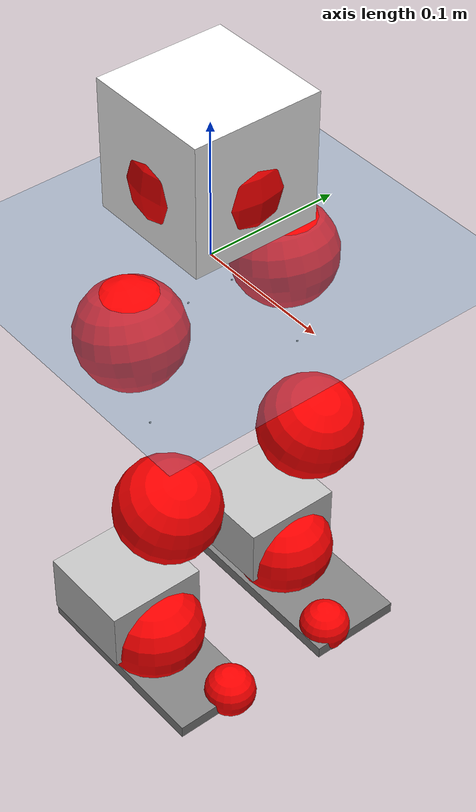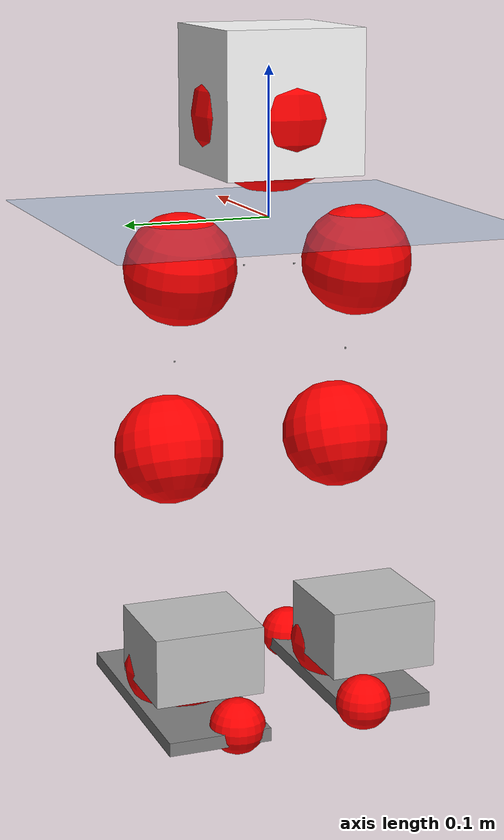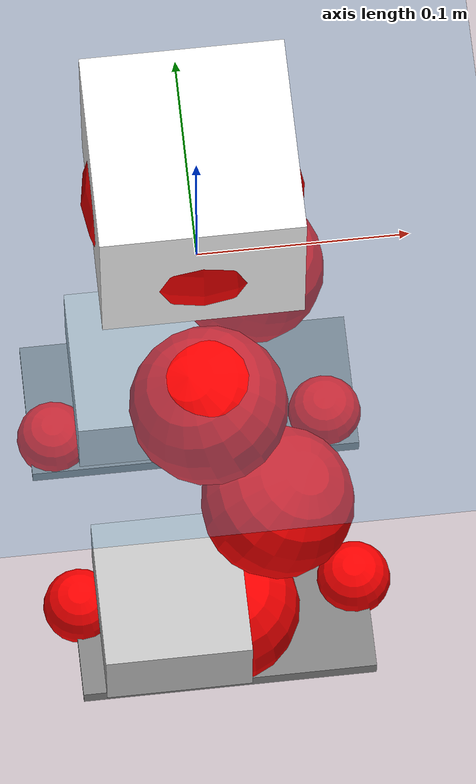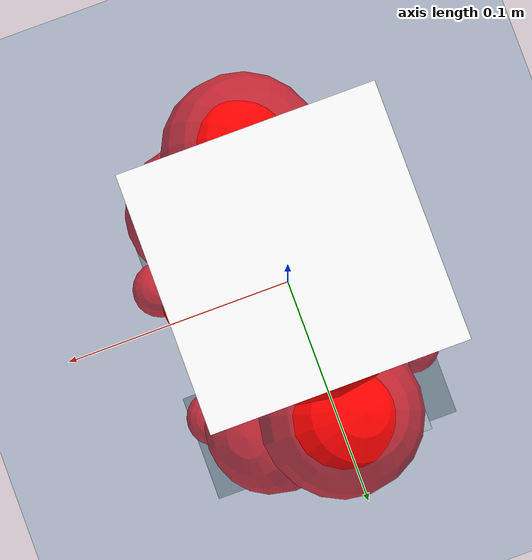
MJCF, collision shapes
<mujoco model="pi_12dof_release_v1">
  <compiler angle="radian" assetdir="assets" balanceinertia="true" inertiafromgeom="false"/>

  <option timestep="0.005" density="1.2" viscosity="2e-05"/>

  <size nkey="1"/>

  <visual>
    <quality shadowsize="8192"/>
    <map shadowclip="0.5"/>
  </visual>

  <default>
    <default class="/">
      <joint armature="0.01" damping="0.01" frictionloss="0.01"/>
      <geom contype="0" conaffinity="0" group="1" solref="-1000 -80"/>
      <site size="0.01 0.005 0.005" group="5"/>
      <general forcelimited="true" biastype="affine" gainprm="20" biasprm="0 -20 -0.5"/>
      <default class="foot">
        <geom size="0.0845 0.036 0.005" type="box" condim="6" group="4" priority="1" friction="0.9 0.2 0.2" solimp="0.015 1 0.005"/>
      </default>
      <default class="reward_collision_sphere">
        <geom group="5" rgba="1 0 0 1"/>
      </default>
    </default>
  </default>

  <asset>
    <texture type="skybox" colorspace="auto" name="//unnamed_texture_0" builtin="gradient" rgb1="0.95 0.95 0.95" rgb2="0.95 0.95 0.95" width="100" height="600"/>
    <texture type="2d" colorspace="auto" name="texplane" builtin="checker" rgb1="0.345 0.575 0.748" rgb2="0.345 0.575 0.748" markrgb="1 1 1" width="512" height="512"/>
    <material name="MatPlane" class="/" texture="texplane" texuniform="true" texrepeat="2 2" specular="0.9"/>
    <mesh name="baselink_1" class="/" file="baselink_1.STL"/>
    <mesh name="r_hip_pitch_link" class="/" file="r_hip_pitch_link.STL"/>
    <mesh name="r_hip_roll_link" class="/" file="r_hip_roll_link.STL"/>
    <mesh name="r_thigh_link" class="/" file="r_thigh_link.STL"/>
    <mesh name="r_calf_link" class="/" file="r_calf_link.STL"/>
    <mesh name="r_ankle_pitch_link" class="/" file="r_ankle_pitch_link.STL"/>
    <mesh name="r_ankle_roll_link" class="/" file="r_ankle_roll_link.STL"/>
    <mesh name="l_hip_pitch_link" class="/" file="l_hip_pitch_link.STL"/>
    <mesh name="l_hip_roll_link" class="/" file="l_hip_roll_link.STL"/>
    <mesh name="l_thigh_link" class="/" file="l_thigh_link.STL"/>
    <mesh name="l_calf_link" class="/" file="l_calf_link.STL"/>
    <mesh name="l_ankle_pitch_link" class="/" file="l_ankle_pitch_link.STL"/>
    <mesh name="l_ankle_roll_link" class="/" file="l_ankle_roll_link.STL"/>
  </asset>

  <worldbody>
    <geom name="floor" class="/" size="100 100 0.125" type="plane" group="0" material="MatPlane"/>
    <light name="toplight_shadow" class="/" pos="0 0 5" dir="0.0990148 0.0990148 -0.990148" type="directional" ambient="0.04 0.04 0.04" diffuse="0.55 0.55 0.55" specular="0.12 0.12 0.12"/>
    <light name="toplight_fill" class="/" pos="0 0 5" dir="0.0990148 0.0990148 -0.990148" type="directional" castshadow="false" ambient="0.04 0.04 0.04" diffuse="0.3 0.3 0.3" specular="0.08 0.08 0.08"/>
    <body name="trunk" pos="-0.00185548 -3.28804e-05 0.000986298" quat="1 -0.000257473 6.99712e-05 0.000290372">
      <inertial pos="0.000308074 0.000255654 0.0395233" quat="0.696803 0.0122159 0.00584327 0.717135" mass="1.79612" diaginertia="0.0116804 0.00335821 0.00367991"/>
      <joint name="//unnamed_joint_0" type="free"/>
      <geom name="//unnamed_geom_1" class="/" type="mesh" density="0" rgba="1 1 1 1" mesh="baselink_1"/>
      <geom name="//unnamed_geom_2" class="/" size="0.04709 0.04709 0.04709" pos="0 0 0.0777506" type="box" rgba="1 1 1 1"/>
      <geom name="//unnamed_geom_3" class="reward_collision_sphere" size="0.051799" pos="0 0 0.0680318"/>
      <site name="imu" class="/" pos="-0.00157269 -0.00462084 0.00234304" size="0.009418"/>
      <camera name="track" class="/" pos="0 -1.63901 0" quat="0.707107 0.707107 0 0" mode="trackcom"/>
      <camera name="ego_camera" class="/" pos="0.0775509 0 0.174939" quat="-0.5 -0.5 0.5 0.5"/>
      <body name="r_hip_pitch_link" pos="0.000191672 -0.0173913 -0.0329666" quat="0.992181 0.000448791 -0.124802 0.000662162">
        <inertial pos="-0.00101071 -0.0457251 0.00119473" quat="-0.0190604 0.705944 -0.0282126 0.707449" mass="0.311768" diaginertia="0.000129606 3.60476e-05 7.24315e-05"/>
        <joint name="r_hip_pitch_joint" class="/" pos="0 0 0" axis="-0.00499173 -0.999987 -0.000921481" range="-1.74766 1.23464" armature="0.00947547" damping="0.0172987" frictionloss="0.00947393"/>
        <geom name="//unnamed_geom_4" class="/" type="mesh" density="0" rgba="0.75294 0.75294 0.75294 1" mesh="r_hip_pitch_link"/>
        <geom name="//unnamed_geom_5" class="/" size="0.0004709 0.0004709 0.0004709" type="box" rgba="0.75294 0.75294 0.75294 1"/>
        <body name="r_hip_roll_link" pos="0.000104654 -0.0458549 -0.000635889" quat="1 2.86591e-08 4.18433e-07 7.27547e-07">
          <inertial pos="0.000729066 0.00041535 -0.058745" quat="0.705889 -0.0801541 -0.0820006 0.69898" mass="0.326399" diaginertia="0.000393599 0.000102449 0.000112935"/>
          <joint name="r_hip_roll_joint" class="/" pos="0 0 0" axis="-1 0.000595313 0.000507005" range="-0.13787 0.478013" armature="0.00866784" damping="0.00341267" frictionloss="0.0092965"/>
          <geom name="//unnamed_geom_6" class="/" type="mesh" density="0" rgba="0.75294 0.75294 0.75294 1" mesh="r_hip_roll_link"/>
          <geom name="//unnamed_geom_7" class="/" size="0.0004709 0.0004709 0.0004709" type="box" rgba="0.75294 0.75294 0.75294 1"/>
          <geom name="//unnamed_geom_8" class="reward_collision_sphere" size="0.037672"/>
          <body name="r_thigh_link" pos="0.000130546 0.000173958 -0.0669963" quat="1 9.25837e-05 0.000123691 8.42953e-05">
            <inertial pos="-6.29143e-05 5.88513e-05 -0.0465088" quat="0.741569 0.670876 0.00111862 0.000443021" mass="0.093453" diaginertia="0.000149032 3.45691e-05 5.0307e-05"/>
            <joint name="r_thigh_joint" class="/" pos="0 0 0" axis="0.000170913 0.000263345 -1" range="-0.300108 0.58594" armature="0.00885778" damping="0" frictionloss="0.00937594"/>
            <geom name="//unnamed_geom_9" class="/" type="mesh" density="0" rgba="0.75294 0.75294 0.75294 1" mesh="r_thigh_link"/>
            <geom name="//unnamed_geom_10" class="/" size="0.0004709 0.0004709 0.0004709" type="box" rgba="0.75294 0.75294 0.75294 1"/>
            <body name="r_calf_link" pos="9.43153e-05 -0.000138431 -0.0679003" quat="0.947536 9.49303e-05 0.319648 0.000278779">
              <inertial pos="0.000138871 -0.00139687 -0.067892" quat="0.999982 -0.00347673 -2.7891e-05 0.00485917" mass="0.69948" diaginertia="0.00413813 0.00129357 0.00015204"/>
              <joint name="r_calf_joint" class="/" pos="0 0 0" axis="0.000157637 -1 0.000470547" stiffness="0.0038649" range="-1.65157 0.623862" armature="0.0105401" damping="0" frictionloss="0.0104166"/>
              <geom name="//unnamed_geom_11" class="/" type="mesh" density="0" rgba="0.75294 0.75294 0.75294 1" mesh="r_calf_link"/>
              <geom name="//unnamed_geom_12" class="/" size="0.0004709 0.0004709 0.0004709" type="box" rgba="0.75294 0.75294 0.75294 1"/>
              <geom name="//unnamed_geom_13" class="reward_collision_sphere" size="0.037672"/>
              <body name="r_ankle_pitch_link" pos="8.2466e-06 0.000345577 -0.134973" quat="0.980007 0.00090593 -0.198959 -0.000130663">
                <inertial pos="0.00475784 0.000866454 0.000330025" quat="0.00316333 0.707486 -0.00456643 0.706706" mass="0.144673" diaginertia="0.000367969 8.39747e-05 0.000104113"/>
                <joint name="r_ankle_pitch_joint" class="/" pos="0 0 0" axis="-0.011728 -0.999931 -0.000475702" range="-1.31268 0.512717" armature="0.00919672" damping="0.00974762" frictionloss="0.0094602"/>
                <geom name="//unnamed_geom_14" class="/" type="mesh" density="0" rgba="0.75294 0.75294 0.75294 1" mesh="r_ankle_pitch_link"/>
                <geom name="//unnamed_geom_15" class="/" size="0.0367302 0.037672 0.023545" type="box" rgba="0.75294 0.75294 0.75294 1"/>
                <body name="r_ankle_roll_link" pos="0.079168 0.00257209 -0.00012675" quat="1 2.02873e-05 5.06911e-06 1.58817e-05">
                  <inertial pos="-0.0255841 5.61436e-05 -0.0137266" quat="0.560917 0.429947 0.432198 0.560109" mass="0.43578" diaginertia="0.00137096 0.000384551 0.000248015"/>
                  <joint name="r_ankle_roll_joint" class="/" pos="0 0 0" axis="-0.999923 -0.0112086 0.00534753" range="-0.161192 0.132501" armature="0.00948907" damping="0.00480908" frictionloss="0.00928402"/>
                  <geom name="//unnamed_geom_16" class="/" type="mesh" density="0" rgba="0.75294 0.75294 0.75294 1" mesh="r_ankle_roll_link"/>
                  <geom name="//unnamed_geom_17" class="/" type="mesh" rgba="0.75294 0.75294 0.75294 1" mesh="r_ankle_roll_link"/>
                  <geom name="right_foot" class="foot" size="0.0745019 0.0321443 0.00478388" pos="-0.0527346 0 -0.0427628"/>
                  <geom name="//unnamed_geom_19" class="reward_collision_sphere" size="0.037672" pos="-0.0517006 0 -0.0194377"/>
                  <geom name="//unnamed_geom_20" class="reward_collision_sphere" size="0.018836" pos="0.0155102 0.0163901 -0.0388753"/>
                  <geom name="//unnamed_geom_21" class="reward_collision_sphere" size="0.018836" pos="-0.124082 0.0163901 -0.0388753"/>
                  <site name="right_foot" class="foot" pos="-0.0527346 0 -0.0427628" size="0.009418"/>
                </body>
              </body>
            </body>
          </body>
        </body>
      </body>
      <body name="l_hip_pitch_link" pos="0.000576981 0.01821 -0.0318084" quat="0.992171 0.000989373 -0.124881 -0.000610538">
        <inertial pos="0.0027137 0.0445471 -0.00026202" quat="-0.038557 0.705561 0.0295357 0.706983" mass="0.325032" diaginertia="0.000151558 3.89532e-05 8.76729e-05"/>
        <joint name="l_hip_pitch_joint" class="/" pos="0 0 0" axis="-0.000913948 0.999996 0.00256635" range="-1.25867 1.74752" armature="0.00964181" damping="0.000808572" frictionloss="0.00894102"/>
        <geom name="//unnamed_geom_22" class="/" type="mesh" density="0" rgba="0.75294 0.75294 0.75294 1" mesh="l_hip_pitch_link"/>
        <geom name="//unnamed_geom_23" class="/" size="0.0004709 0.0004709 0.0004709" type="box" rgba="0.75294 0.75294 0.75294 1"/>
        <body name="l_hip_roll_link" pos="-0.00118278 0.0451964 0.000578758" quat="1 -0.000456944 0.000634439 -0.000240379">
          <inertial pos="-0.00129674 -0.000447837 -0.059484" quat="0.703509 -0.0731277 -0.0782452 0.70257" mass="0.320268" diaginertia="0.000390818 0.000101748 0.000110196"/>
          <joint name="l_hip_roll_joint" class="/" pos="0 0 0" axis="-0.99998 0.0010144 -0.00630226" stiffness="0.00426174" range="-0.486887 0.136098" armature="0.00955329" damping="0" frictionloss="0.00898153"/>
          <geom name="//unnamed_geom_24" class="/" type="mesh" density="0" rgba="0.75294 0.75294 0.75294 1" mesh="l_hip_roll_link"/>
          <geom name="//unnamed_geom_25" class="/" size="0.0004709 0.0004709 0.0004709" type="box" rgba="0.75294 0.75294 0.75294 1"/>
          <geom name="//unnamed_geom_26" class="reward_collision_sphere" size="0.037672"/>
          <body name="l_thigh_link" pos="0.00024321 -0.000972927 -0.0680954" quat="1 0.000183369 -3.26011e-05 3.16374e-05">
            <inertial pos="0.000253049 -0.00156591 -0.0471004" quat="0.675135 0.737694 -0.000337283 -0.000138924" mass="0.0946101" diaginertia="0.000147466 3.49252e-05 5.02304e-05"/>
            <joint name="l_thigh_joint" class="/" pos="0 0 0" axis="-0.00011787 -5.62039e-07 -1" range="-0.604028 0.287943" armature="0.00980353" damping="0.0029194" frictionloss="0.00917259"/>
            <geom name="//unnamed_geom_27" class="/" type="mesh" density="0" rgba="0.75294 0.75294 0.75294 1" mesh="l_thigh_link"/>
            <geom name="//unnamed_geom_28" class="/" size="0.0004709 0.0004709 0.0004709" type="box" rgba="0.75294 0.75294 0.75294 1"/>
            <body name="l_calf_link" pos="7.22289e-05 -0.000944072 -0.0676887" quat="0.94765 0.000184569 0.31931 4.63223e-05">
              <inertial pos="0.000185055 0.00274812 -0.0680426" quat="0.999983 -0.00261672 -0.0043979 0.00261238" mass="0.683207" diaginertia="0.0041456 0.00129257 0.000153852"/>
              <joint name="l_calf_joint" class="/" pos="0 0 0" axis="0.000627794 0.999999 0.0012709" stiffness="0.00447658" range="-0.655555 1.66259" armature="0.00846704" damping="0.00464968" frictionloss="0.010321"/>
              <geom name="//unnamed_geom_29" class="/" type="mesh" density="0" rgba="0.75294 0.75294 0.75294 1" mesh="l_calf_link"/>
              <geom name="//unnamed_geom_30" class="/" size="0.0004709 0.0004709 0.0004709" type="box" rgba="0.75294 0.75294 0.75294 1"/>
              <geom name="//unnamed_geom_31" class="reward_collision_sphere" size="0.037672"/>
              <body name="l_ankle_pitch_link" pos="0.000630112 0.00183585 -0.136947" quat="0.98013 0.000319992 -0.198356 9.451e-05">
                <inertial pos="0.00522724 0.000101201 -0.000412262" quat="-0.00136781 0.706894 0.00278131 0.707312" mass="0.150483" diaginertia="0.00037263 8.28023e-05 0.000103163"/>
                <joint name="l_ankle_pitch_joint" class="/" pos="0 0 0" axis="-0.00125707 0.999999 0.00108003" range="-0.505334 1.29979" armature="0.00945521" damping="0.00257249" frictionloss="0.00894048"/>
                <geom name="//unnamed_geom_32" class="/" type="mesh" density="0" rgba="0.75294 0.75294 0.75294 1" mesh="l_ankle_pitch_link"/>
                <geom name="//unnamed_geom_33" class="/" size="0.0367302 0.037672 0.023545" type="box" rgba="0.75294 0.75294 0.75294 1"/>
                <body name="l_ankle_roll_link" pos="0.0759731 0.00183945 9.47119e-05" quat="1 -1.52711e-05 1.97856e-05 1.60853e-05">
                  <inertial pos="-0.0232337 -0.00015923 -0.014929" quat="0.558147 0.435092 0.433488 0.557902" mass="0.433778" diaginertia="0.00129248 0.000370898 0.000239067"/>
                  <joint name="l_ankle_roll_joint" class="/" pos="0 0 0" axis="-0.999988 0.00187755 0.00448391" range="-0.14187 0.15151" armature="0.00950758" damping="0.00395018" frictionloss="0.00927462"/>
                  <geom name="//unnamed_geom_34" class="/" type="mesh" density="0" rgba="0.75294 0.75294 0.75294 1" mesh="l_ankle_roll_link"/>
                  <geom name="//unnamed_geom_35" class="/" type="mesh" rgba="0.75294 0.75294 0.75294 1" mesh="l_ankle_roll_link"/>
                  <geom name="left_foot" class="foot" size="0.0840357 0.0352646 0.00459558" pos="-0.0527346 0 -0.0427628"/>
                  <geom name="//unnamed_geom_37" class="reward_collision_sphere" size="0.037672" pos="-0.0517006 0 -0.0194377"/>
                  <geom name="//unnamed_geom_38" class="reward_collision_sphere" size="0.018836" pos="0.0155102 -0.0163901 -0.0388753"/>
                  <geom name="//unnamed_geom_39" class="reward_collision_sphere" size="0.018836" pos="-0.124082 -0.0163901 -0.0388753"/>
                  <site name="left_foot" class="foot" pos="-0.0527346 0 -0.0427628" size="0.009418"/>
                </body>
              </body>
            </body>
          </body>
        </body>
      </body>
    </body>
  </worldbody>

  <contact>
    <pair class="/" geom1="floor" geom2="right_foot" name="//unnamed_contact_1"/>
    <pair class="/" geom1="floor" geom2="left_foot" name="//unnamed_contact_0"/>
  </contact>

  <actuator>
    <general name="r_hip_pitch_joint" class="/" joint="r_hip_pitch_joint" forcerange="-19.795 19.795" gainprm="19.142" biasprm="0 -19.142 -0.484498"/>
    <general name="r_hip_roll_joint" class="/" joint="r_hip_roll_joint" forcerange="-19.9049 19.9049" gainprm="19.142" biasprm="0 -19.142 -0.484498"/>
    <general name="r_thigh_joint" class="/" joint="r_thigh_joint" forcerange="-19.6864 19.6864" gainprm="19.142" biasprm="0 -19.142 -0.484498"/>
    <general name="r_calf_joint" class="/" joint="r_calf_joint" forcerange="-19.5498 19.5498" gainprm="19.142" biasprm="0 -19.142 -0.484498"/>
    <general name="r_ankle_pitch_joint" class="/" joint="r_ankle_pitch_joint" forcerange="-19.855 19.855" gainprm="19.142" biasprm="0 -19.142 -0.484498"/>
    <general name="r_ankle_roll_joint" class="/" joint="r_ankle_roll_joint" forcerange="-19.6179 19.6179" gainprm="19.142" biasprm="0 -19.142 -0.484498"/>
    <general name="l_hip_pitch_joint" class="/" joint="l_hip_pitch_joint" forcerange="-19.8839 19.8839" gainprm="19.142" biasprm="0 -19.142 -0.484498"/>
    <general name="l_hip_roll_joint" class="/" joint="l_hip_roll_joint" forcerange="-20.4364 20.4364" gainprm="19.142" biasprm="0 -19.142 -0.484498"/>
    <general name="l_thigh_joint" class="/" joint="l_thigh_joint" forcerange="-19.7096 19.7096" gainprm="19.142" biasprm="0 -19.142 -0.484498"/>
    <general name="l_calf_joint" class="/" joint="l_calf_joint" forcerange="-21.3561 21.3561" gainprm="19.142" biasprm="0 -19.142 -0.484498"/>
    <general name="l_ankle_pitch_joint" class="/" joint="l_ankle_pitch_joint" forcerange="-19.8278 19.8278" gainprm="19.142" biasprm="0 -19.142 -0.484498"/>
    <general name="l_ankle_roll_joint" class="/" joint="l_ankle_roll_joint" forcerange="-19.5023 19.5023" gainprm="19.142" biasprm="0 -19.142 -0.484498"/>
  </actuator>

  <sensor>
    <gyro site="imu" name="imu_angular_velocity"/>
    <velocimeter site="imu" name="imu_linear_velocity"/>
    <framelinvel objtype="site" objname="left_foot" name="left_foot_global_linear_velocity"/>
    <framelinvel objtype="site" objname="right_foot" name="right_foot_global_linear_velocity"/>
  </sensor>

  <keyframe>
    <key name="home" qpos="0 0 0.291 1 0 0 0 0.4 0 0 -0.8 0.4 0 -0.4 0 0 0.8 -0.4 0"/>
  </keyframe>
</mujoco>
